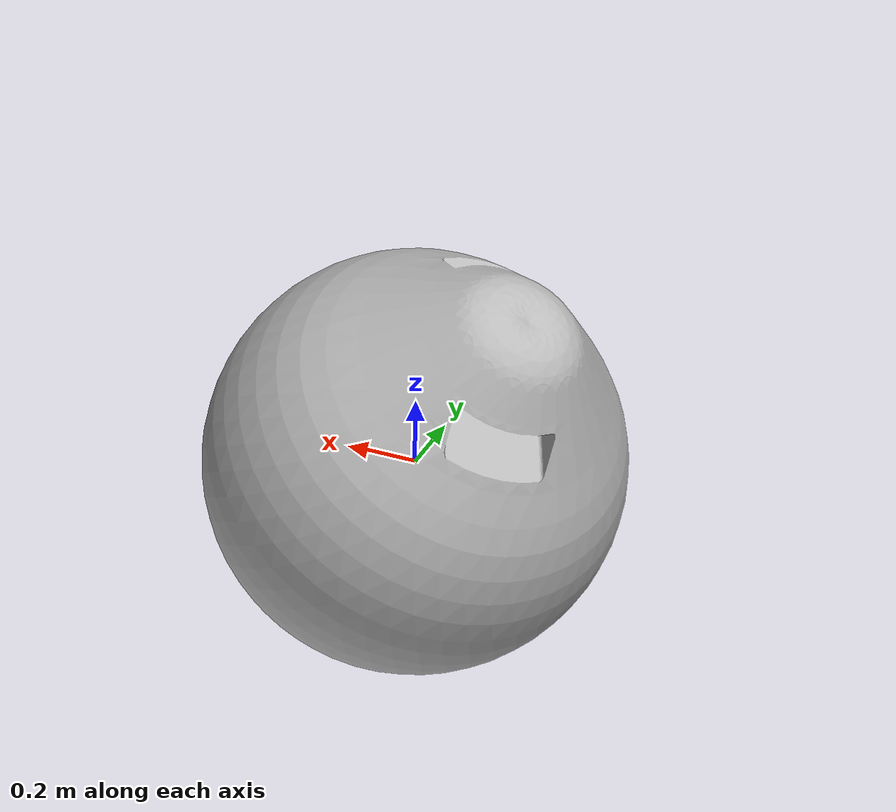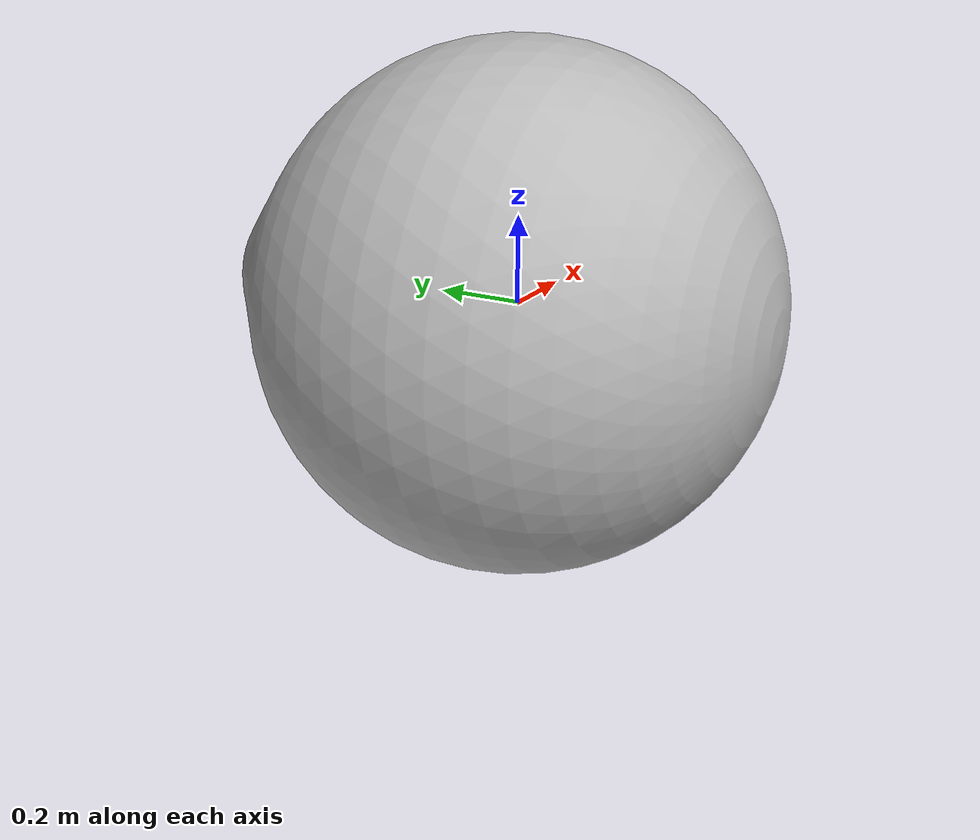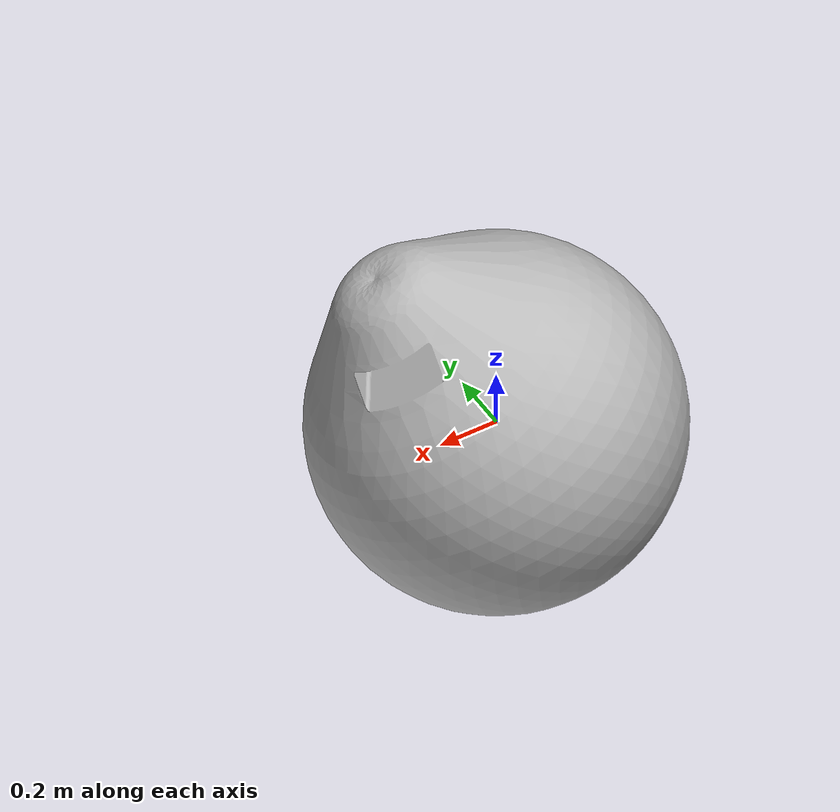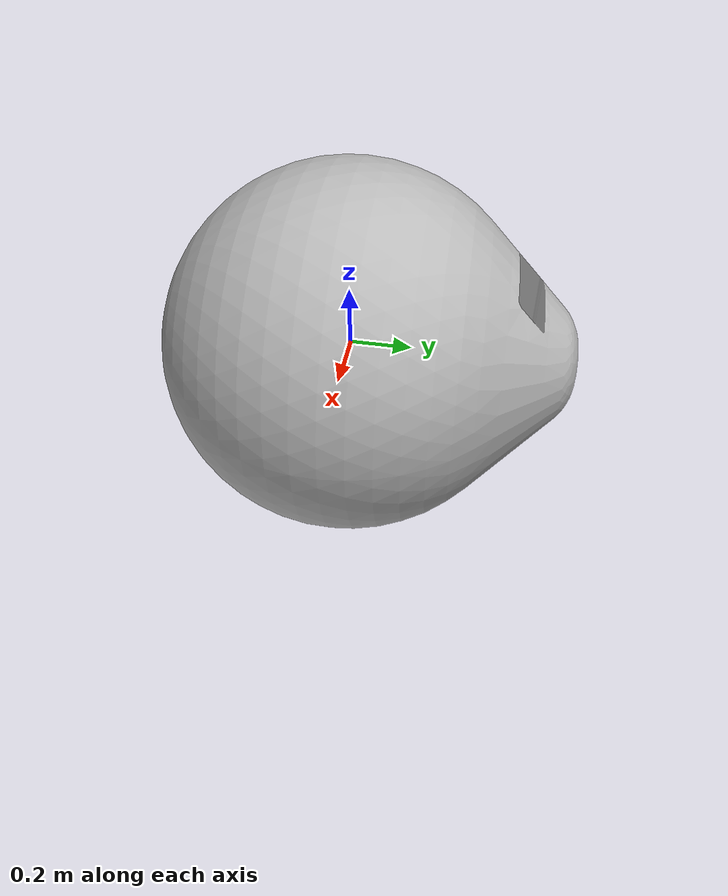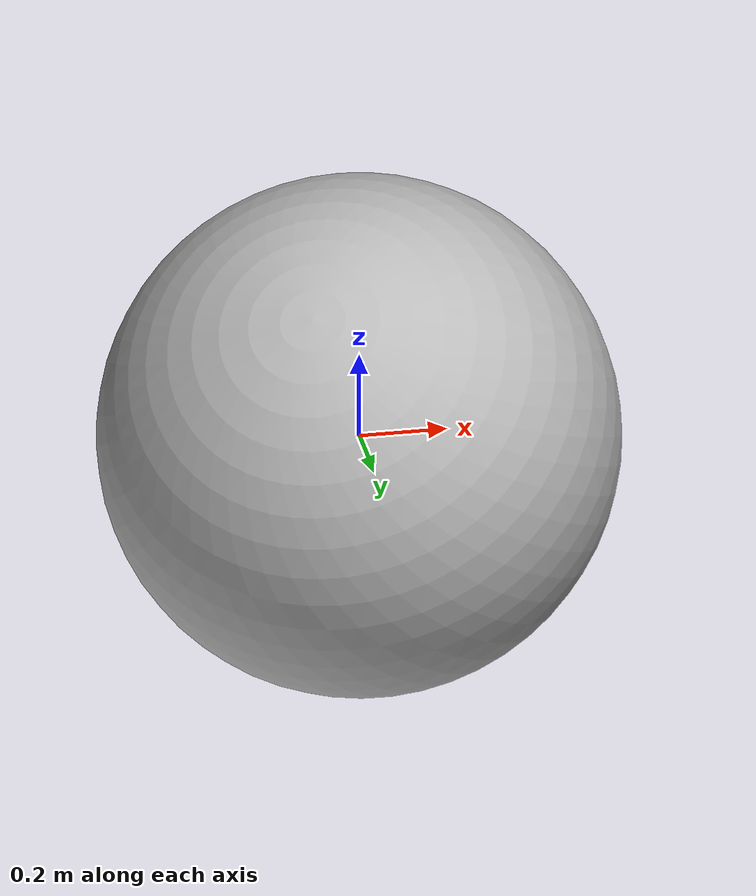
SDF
<?xml version="1.0" ?>
<sdf version="1.6">
    <model name="yellow_ball">
        <link name="link">
            <inertial>
                <origin xyz="0 0 0.5"/>
                <pose>0 0 0 0 0 0</pose>
                <mass>3.5</mass>
                <inertia>

                    <ixx>0.0875</ixx>
                    <ixy>0</ixy>
                    <ixz>0</ixz>
                    <iyy>0.0875</iyy>
                    <iyz>0</iyz>
                    <izz>0.0875</izz>
                </inertia>
            </inertial>
            <collision name="collision">
                <geometry>
                    <mesh>
                        <uri>meshes/yellow_ball.obj</uri>
                        <scale>0.1 0.1 0.1</scale>
                    </mesh>
                </geometry>
            </collision>
            <visual name="visual">
                <geometry>
                    <mesh>
                        <uri>meshes/yellow_ball.obj</uri>
                        <scale>0.1 0.1 0.1</scale>
                    </mesh>
                </geometry>
            </visual>
        </link>
    </model>
</sdf>
